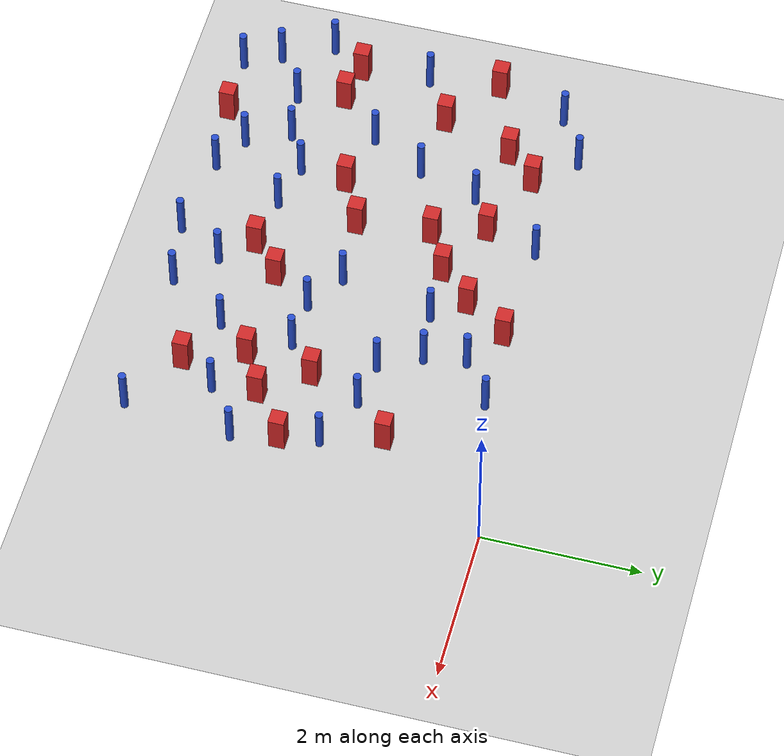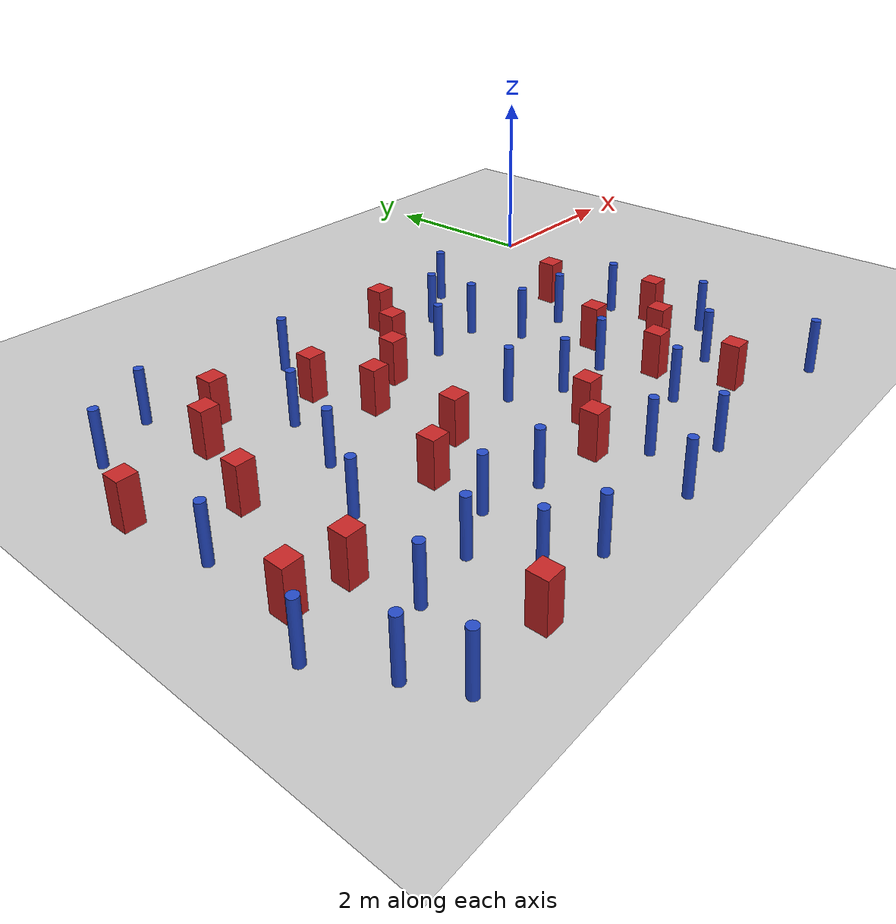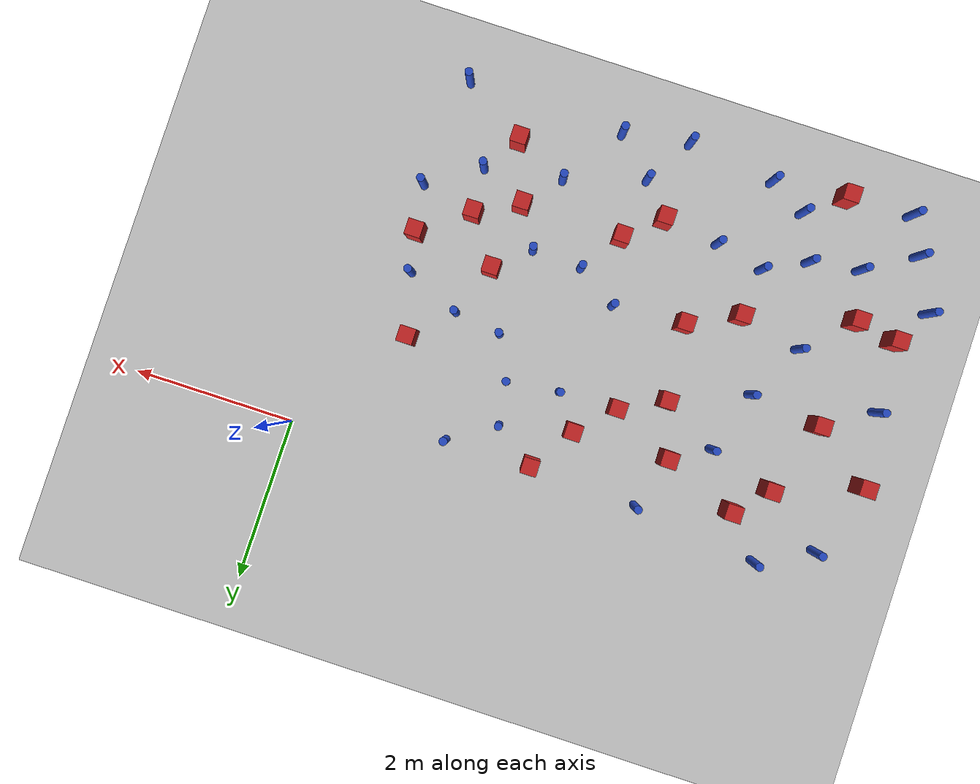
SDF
<sdf version="1.6">
 <world name="default">
  <model name="ground_plane">
   <static>1</static>
   <link name="link">
    <collision name="collision">
     <geometry><plane><normal>0 0 1</normal><size>100 100</size></plane></geometry>
     <surface><friction><ode><mu>100</mu><mu2>50</mu2></ode></friction></surface>
    </collision>
    <visual name="visual">
     <cast_shadows>0</cast_shadows>
     <geometry><plane><normal>0 0 1</normal><size>100 100</size></plane></geometry>
     <material>
      <ambient>1.0 1.0 1.0 1.0</ambient>
      <diffuse>0.8 0.8 0.8 1.0</diffuse>
      <specular>0.01 0.01 0.01 1.000000</specular>
     </material>
    </visual>
   </link>
  </model>
  <model name="pole_obstacle1">
   <static>true</static>
   <pose>-3.60275589972 -4.77980492807 2.88873142074e-08 -9.90536689859e-09 4.60219948989e-07 -1.20965994961e-07</pose>
   <link name="link">
    <pose>0 0 0.3 0 -0 0</pose>
    <inertial>
     <mass>1</mass>
     <inertia><ixx>0.145833</ixx><ixy>0</ixy><ixz>0</ixz><iyy>0.145833</iyy><iyz>0</iyz><izz>0.125</izz></inertia>
    </inertial>
    <collision name="collision">
     <geometry><cylinder><radius>0.05</radius><length>.6</length></cylinder></geometry>
    </collision>
    <visual name="visual">
     <geometry><cylinder><radius>0.05</radius><length>.6</length></cylinder></geometry>
     <material>
      <script><name>Gazebo/Blue</name><uri>file://media/materials/scripts/gazebo.material</uri></script>
     </material>
    </visual>
   </link>
  </model>
  <model name="pole_obstacle7">
   <static>true</static>
   <pose>-6.55722692997 -0.499189237258 2.88873142074e-08 -9.90536689333e-09 4.60219949001e-07 -1.20965994954e-07</pose>
   <link name="link">
    <pose>0 0 0.3 0 -0 0</pose>
    <inertial>
     <mass>1</mass>
     <inertia><ixx>0.145833</ixx><ixy>0</ixy><ixz>0</ixz><iyy>0.145833</iyy><iyz>0</iyz><izz>0.125</izz></inertia>
    </inertial>
    <collision name="collision">
     <geometry><cylinder><radius>0.05</radius><length>.6</length></cylinder></geometry>
    </collision>
    <visual name="visual">
     <geometry><cylinder><radius>0.05</radius><length>.6</length></cylinder></geometry>
     <material>
      <script><name>Gazebo/Blue</name><uri>file://media/materials/scripts/gazebo.material</uri></script>
     </material>
    </visual>
   </link>
  </model>
  <model name="pole_obstacle10">
   <static>true</static>
   <pose>-2.10604508527 -1.82271436291 2.88873142074e-08 -9.90536689395e-09 4.60219949e-07 -1.20965994953e-07</pose>
   <link name="link">
    <pose>0 0 0.3 0 -0 0</pose>
    <inertial>
     <mass>1</mass>
     <inertia><ixx>0.145833</ixx><ixy>0</ixy><ixz>0</ixz><iyy>0.145833</iyy><iyz>0</iyz><izz>0.125</izz></inertia>
    </inertial>
    <collision name="collision">
     <geometry><cylinder><radius>0.05</radius><length>.6</length></cylinder></geometry>
    </collision>
    <visual name="visual">
     <geometry><cylinder><radius>0.05</radius><length>.6</length></cylinder></geometry>
     <material>
      <script><name>Gazebo/Blue</name><uri>file://media/materials/scripts/gazebo.material</uri></script>
     </material>
    </visual>
   </link>
  </model>
  <model name="pole_obstacle22">
   <static>true</static>
   <pose>-2.25530904149 -3.8688419531 2.88873142074e-08 -9.90536690232e-09 4.6021994898e-07 -1.20965994968e-07</pose>
   <link name="link">
    <pose>0 0 0.3 0 -0 0</pose>
    <inertial>
     <mass>1</mass>
     <inertia><ixx>0.145833</ixx><ixy>0</ixy><ixz>0</ixz><iyy>0.145833</iyy><iyz>0</iyz><izz>0.125</izz></inertia>
    </inertial>
    <collision name="collision">
     <geometry><cylinder><radius>0.05</radius><length>.6</length></cylinder></geometry>
    </collision>
    <visual name="visual">
     <geometry><cylinder><radius>0.05</radius><length>.6</length></cylinder></geometry>
     <material>
      <script><name>Gazebo/Blue</name><uri>file://media/materials/scripts/gazebo.material</uri></script>
     </material>
    </visual>
   </link>
  </model>
  <model name="square_post_obstacle23">
   <static>true</static>
   <pose>-4.5173909477 -1.01557871143 8.22691968438e-08 7.2212513382e-06 -7.54495500217e-07 2.29674213826e-05</pose>
   <link name="link">
    <pose>0 0 0.25 0 -0 0</pose>
    <inertial>
     <mass>100</mass>
     <inertia>
      <ixx>0.166667</ixx>
      <ixy>0</ixy>
      <ixz>0</ixz>
      <iyy>0.166667</iyy>
      <iyz>0</iyz>
      <izz>0.166667</izz>
     </inertia>
    </inertial>
    <collision name="collision"><geometry><box><size>.2 .2 .5</size></box></geometry></collision>
    <visual name="visual">
     <geometry><box><size>.2 .2 .5</size></box></geometry>
     <material>
      <script><name>Gazebo/Red</name><uri>file://media/materials/scripts/gazebo.material</uri></script>
     </material>
    </visual>
   </link>
  </model>
  <model name="square_post_obstacle24">
   <static>true</static>
   <pose>-6.70715335339 -3.23481883566 8.22691968438e-08 7.2212513382e-06 -7.54495500217e-07 2.29674213826e-05</pose>
   <link name="link">
    <pose>0 0 0.25 0 -0 0</pose>
    <inertial>
     <mass>100</mass>
     <inertia>
      <ixx>0.166667</ixx>
      <ixy>0</ixy>
      <ixz>0</ixz>
      <iyy>0.166667</iyy>
      <iyz>0</iyz>
      <izz>0.166667</izz>
     </inertia>
    </inertial>
    <collision name="collision"><geometry><box><size>.2 .2 .5</size></box></geometry></collision>
    <visual name="visual">
     <geometry><box><size>.2 .2 .5</size></box></geometry>
     <material>
      <script><name>Gazebo/Red</name><uri>file://media/materials/scripts/gazebo.material</uri></script>
     </material>
    </visual>
   </link>
  </model>
  <model name="square_post_obstacle27">
   <static>true</static>
   <pose>-1.76567258791 -2.56179433615 8.22691968438e-08 7.2212513382e-06 -7.54495500217e-07 2.29674213826e-05</pose>
   <link name="link">
    <pose>0 0 0.25 0 -0 0</pose>
    <inertial>
     <mass>100</mass>
     <inertia>
      <ixx>0.166667</ixx>
      <ixy>0</ixy>
      <ixz>0</ixz>
      <iyy>0.166667</iyy>
      <iyz>0</iyz>
      <izz>0.166667</izz>
     </inertia>
    </inertial>
    <collision name="collision"><geometry><box><size>.2 .2 .5</size></box></geometry></collision>
    <visual name="visual">
     <geometry><box><size>.2 .2 .5</size></box></geometry>
     <material>
      <script><name>Gazebo/Red</name><uri>file://media/materials/scripts/gazebo.material</uri></script>
     </material>
    </visual>
   </link>
  </model>
  <model name="pole_obstacle37">
   <static>true</static>
   <pose>-2.44811253121 -0.762430633008 2.88873142074e-08 -9.90536689285e-09 4.60219949002e-07 -1.20965994953e-07</pose>
   <link name="link">
    <pose>0 0 0.3 0 -0 0</pose>
    <inertial>
     <mass>1</mass>
     <inertia><ixx>0.145833</ixx><ixy>0</ixy><ixz>0</ixz><iyy>0.145833</iyy><iyz>0</iyz><izz>0.125</izz></inertia>
    </inertial>
    <collision name="collision">
     <geometry><cylinder><radius>0.05</radius><length>.6</length></cylinder></geometry>
    </collision>
    <visual name="visual">
     <geometry><cylinder><radius>0.05</radius><length>.6</length></cylinder></geometry>
     <material>
      <script><name>Gazebo/Blue</name><uri>file://media/materials/scripts/gazebo.material</uri></script>
     </material>
    </visual>
   </link>
  </model>
  <model name="square_post_obstacle34">
   <static>true</static>
   <pose>-6.13358861595 -1.96599567202 8.22691968438e-08 7.2212513382e-06 -7.54495500217e-07 2.29674213826e-05</pose>
   <link name="link">
    <pose>0 0 0.25 0 -0 0</pose>
    <inertial>
     <mass>100</mass>
     <inertia>
      <ixx>0.166667</ixx>
      <ixy>0</ixy>
      <ixz>0</ixz>
      <iyy>0.166667</iyy>
      <iyz>0</iyz>
      <izz>0.166667</izz>
     </inertia>
    </inertial>
    <collision name="collision"><geometry><box><size>.2 .2 .5</size></box></geometry></collision>
    <visual name="visual">
     <geometry><box><size>.2 .2 .5</size></box></geometry>
     <material>
      <script><name>Gazebo/Red</name><uri>file://media/materials/scripts/gazebo.material</uri></script>
     </material>
    </visual>
   </link>
  </model>
  <model name="pole_obstacle47">
   <static>true</static>
   <pose>-6.76178770798 -2.34009925157 2.88873142074e-08 -9.90536690245e-09 4.6021994898e-07 -1.20965994966e-07</pose>
   <link name="link">
    <pose>0 0 0.3 0 -0 0</pose>
    <inertial>
     <mass>1</mass>
     <inertia><ixx>0.145833</ixx><ixy>0</ixy><ixz>0</ixz><iyy>0.145833</iyy><iyz>0</iyz><izz>0.125</izz></inertia>
    </inertial>
    <collision name="collision">
     <geometry><cylinder><radius>0.05</radius><length>.6</length></cylinder></geometry>
    </collision>
    <visual name="visual">
     <geometry><cylinder><radius>0.05</radius><length>.6</length></cylinder></geometry>
     <material>
      <script><name>Gazebo/Blue</name><uri>file://media/materials/scripts/gazebo.material</uri></script>
     </material>
    </visual>
   </link>
  </model>
  <model name="pole_obstacle48">
   <static>true</static>
   <pose>-5.62628607458 -2.7789011832 2.88873142074e-08 -9.90536690245e-09 4.6021994898e-07 -1.20965994966e-07</pose>
   <link name="link">
    <pose>0 0 0.3 0 -0 0</pose>
    <inertial>
     <mass>1</mass>
     <inertia><ixx>0.145833</ixx><ixy>0</ixy><ixz>0</ixz><iyy>0.145833</iyy><iyz>0</iyz><izz>0.125</izz></inertia>
    </inertial>
    <collision name="collision">
     <geometry><cylinder><radius>0.05</radius><length>.6</length></cylinder></geometry>
    </collision>
    <visual name="visual">
     <geometry><cylinder><radius>0.05</radius><length>.6</length></cylinder></geometry>
     <material>
      <script><name>Gazebo/Blue</name><uri>file://media/materials/scripts/gazebo.material</uri></script>
     </material>
    </visual>
   </link>
  </model>
  <model name="pole_obstacle49">
   <static>true</static>
   <pose>-0.643846311855 -3.2878571671 2.88873142074e-08 -9.90536689636e-09 4.60219948994e-07 -1.20965994958e-07</pose>
   <link name="link">
    <pose>0 0 0.3 0 -0 0</pose>
    <inertial>
     <mass>1</mass>
     <inertia><ixx>0.145833</ixx><ixy>0</ixy><ixz>0</ixz><iyy>0.145833</iyy><iyz>0</iyz><izz>0.125</izz></inertia>
    </inertial>
    <collision name="collision">
     <geometry><cylinder><radius>0.05</radius><length>.6</length></cylinder></geometry>
    </collision>
    <visual name="visual">
     <geometry><cylinder><radius>0.05</radius><length>.6</length></cylinder></geometry>
     <material>
      <script><name>Gazebo/Blue</name><uri>file://media/materials/scripts/gazebo.material</uri></script>
     </material>
    </visual>
   </link>
  </model>
  <model name="pole_obstacle50">
   <static>true</static>
   <pose>-1.51328782539 -1.90866504086 2.88873142074e-08 -9.90536689672e-09 4.60219948993e-07 -1.20965994959e-07</pose>
   <link name="link">
    <pose>0 0 0.3 0 -0 0</pose>
    <inertial>
     <mass>1</mass>
     <inertia><ixx>0.145833</ixx><ixy>0</ixy><ixz>0</ixz><iyy>0.145833</iyy><iyz>0</iyz><izz>0.125</izz></inertia>
    </inertial>
    <collision name="collision">
     <geometry><cylinder><radius>0.05</radius><length>.6</length></cylinder></geometry>
    </collision>
    <visual name="visual">
     <geometry><cylinder><radius>0.05</radius><length>.6</length></cylinder></geometry>
     <material>
      <script><name>Gazebo/Blue</name><uri>file://media/materials/scripts/gazebo.material</uri></script>
     </material>
    </visual>
   </link>
  </model>
  <model name="square_post_obstacle42">
   <static>true</static>
   <pose>-3.58479568858 -3.79104422464 8.22691968438e-08 7.2212513382e-06 -7.54495500217e-07 2.29674213826e-05</pose>
   <link name="link">
    <pose>0 0 0.25 0 -0 0</pose>
    <inertial>
     <mass>100</mass>
     <inertia>
      <ixx>0.166667</ixx>
      <ixy>0</ixy>
      <ixz>0</ixz>
      <iyy>0.166667</iyy>
      <iyz>0</iyz>
      <izz>0.166667</izz>
     </inertia>
    </inertial>
    <collision name="collision"><geometry><box><size>.2 .2 .5</size></box></geometry></collision>
    <visual name="visual">
     <geometry><box><size>.2 .2 .5</size></box></geometry>
     <material>
      <script><name>Gazebo/Red</name><uri>file://media/materials/scripts/gazebo.material</uri></script>
     </material>
    </visual>
   </link>
  </model>
  <model name="pole_obstacle58">
   <static>true</static>
   <pose>-6.05052273852 -3.93578563439 2.88873142074e-08 -9.90536690245e-09 4.6021994898e-07 -1.20965994966e-07</pose>
   <link name="link">
    <pose>0 0 0.3 0 -0 0</pose>
    <inertial>
     <mass>1</mass>
     <inertia><ixx>0.145833</ixx><ixy>0</ixy><ixz>0</ixz><iyy>0.145833</iyy><iyz>0</iyz><izz>0.125</izz></inertia>
    </inertial>
    <collision name="collision">
     <geometry><cylinder><radius>0.05</radius><length>.6</length></cylinder></geometry>
    </collision>
    <visual name="visual">
     <geometry><cylinder><radius>0.05</radius><length>.6</length></cylinder></geometry>
     <material>
      <script><name>Gazebo/Blue</name><uri>file://media/materials/scripts/gazebo.material</uri></script>
     </material>
    </visual>
   </link>
  </model>
  <model name="pole_obstacle61">
   <static>true</static>
   <pose>-4.29644254252 -3.70386586468 2.88873142074e-08 -9.90536690245e-09 4.6021994898e-07 -1.20965994966e-07</pose>
   <link name="link">
    <pose>0 0 0.3 0 -0 0</pose>
    <inertial>
     <mass>1</mass>
     <inertia><ixx>0.145833</ixx><ixy>0</ixy><ixz>0</ixz><iyy>0.145833</iyy><iyz>0</iyz><izz>0.125</izz></inertia>
    </inertial>
    <collision name="collision">
     <geometry><cylinder><radius>0.05</radius><length>.6</length></cylinder></geometry>
    </collision>
    <visual name="visual">
     <geometry><cylinder><radius>0.05</radius><length>.6</length></cylinder></geometry>
     <material>
      <script><name>Gazebo/Blue</name><uri>file://media/materials/scripts/gazebo.material</uri></script>
     </material>
    </visual>
   </link>
  </model>
  <model name="square_post_obstacle49">
   <static>true</static>
   <pose>-5.62283646338 -4.7405497997 8.22691968438e-08 7.22125133819e-06 -7.54495500217e-07 2.29674213826e-05</pose>
   <link name="link">
    <pose>0 0 0.25 0 -0 0</pose>
    <inertial>
     <mass>100</mass>
     <inertia>
      <ixx>0.166667</ixx>
      <ixy>0</ixy>
      <ixz>0</ixz>
      <iyy>0.166667</iyy>
      <iyz>0</iyz>
      <izz>0.166667</izz>
     </inertia>
    </inertial>
    <collision name="collision"><geometry><box><size>.2 .2 .5</size></box></geometry></collision>
    <visual name="visual">
     <geometry><box><size>.2 .2 .5</size></box></geometry>
     <material>
      <script><name>Gazebo/Red</name><uri>file://media/materials/scripts/gazebo.material</uri></script>
     </material>
    </visual>
   </link>
  </model>
  <model name="square_post_obstacle50">
   <static>true</static>
   <pose>-4.83255219903 -2.95318874231 8.22691968438e-08 7.2212513382e-06 -7.54495500217e-07 2.29674213826e-05</pose>
   <link name="link">
    <pose>0 0 0.25 0 -0 0</pose>
    <inertial>
     <mass>100</mass>
     <inertia>
      <ixx>0.166667</ixx>
      <ixy>0</ixy>
      <ixz>0</ixz>
      <iyy>0.166667</iyy>
      <iyz>0</iyz>
      <izz>0.166667</izz>
     </inertia>
    </inertial>
    <collision name="collision"><geometry><box><size>.2 .2 .5</size></box></geometry></collision>
    <visual name="visual">
     <geometry><box><size>.2 .2 .5</size></box></geometry>
     <material>
      <script><name>Gazebo/Red</name><uri>file://media/materials/scripts/gazebo.material</uri></script>
     </material>
    </visual>
   </link>
  </model>
  <model name="pole_obstacle70">
   <static>true</static>
   <pose>-5.17053075357 -4.38938246099 2.88873142074e-08 -9.90536690842e-09 4.60219948965e-07 -1.20965994976e-07</pose>
   <link name="link">
    <pose>0 0 0.3 0 -0 0</pose>
    <inertial>
     <mass>1</mass>
     <inertia><ixx>0.145833</ixx><ixy>0</ixy><ixz>0</ixz><iyy>0.145833</iyy><iyz>0</iyz><izz>0.125</izz></inertia>
    </inertial>
    <collision name="collision">
     <geometry><cylinder><radius>0.05</radius><length>.6</length></cylinder></geometry>
    </collision>
    <visual name="visual">
     <geometry><cylinder><radius>0.05</radius><length>.6</length></cylinder></geometry>
     <material>
      <script><name>Gazebo/Blue</name><uri>file://media/materials/scripts/gazebo.material</uri></script>
     </material>
    </visual>
   </link>
  </model>
  <model name="pole_obstacle80">
   <static>true</static>
   <pose>-5.2430106532 -2.07086255487 2.88873142074e-08 -9.90536690245e-09 4.6021994898e-07 -1.20965994966e-07</pose>
   <link name="link">
    <pose>0 0 0.3 0 -0 0</pose>
    <inertial>
     <mass>1</mass>
     <inertia><ixx>0.145833</ixx><ixy>0</ixy><ixz>0</ixz><iyy>0.145833</iyy><iyz>0</iyz><izz>0.125</izz></inertia>
    </inertial>
    <collision name="collision">
     <geometry><cylinder><radius>0.05</radius><length>.6</length></cylinder></geometry>
    </collision>
    <visual name="visual">
     <geometry><cylinder><radius>0.05</radius><length>.6</length></cylinder></geometry>
     <material>
      <script><name>Gazebo/Blue</name><uri>file://media/materials/scripts/gazebo.material</uri></script>
     </material>
    </visual>
   </link>
  </model>
  <model name="square_post_obstacle70">
   <static>true</static>
   <pose>-1.34234610897 -3.1392164839 8.22691968438e-08 7.2212513382e-06 -7.54495500217e-07 2.29674213826e-05</pose>
   <link name="link">
    <pose>0 0 0.25 0 -0 0</pose>
    <inertial>
     <mass>100</mass>
     <inertia>
      <ixx>0.166667</ixx>
      <ixy>0</ixy>
      <ixz>0</ixz>
      <iyy>0.166667</iyy>
      <iyz>0</iyz>
      <izz>0.166667</izz>
     </inertia>
    </inertial>
    <collision name="collision"><geometry><box><size>.2 .2 .5</size></box></geometry></collision>
    <visual name="visual">
     <geometry><box><size>.2 .2 .5</size></box></geometry>
     <material>
      <script><name>Gazebo/Red</name><uri>file://media/materials/scripts/gazebo.material</uri></script>
     </material>
    </visual>
   </link>
  </model>
  <model name="square_post_obstacle72">
   <static>true</static>
   <pose>-6.18268394666 -3.3233390862 8.22691968438e-08 7.2212513382e-06 -7.54495500217e-07 2.29674213826e-05</pose>
   <link name="link">
    <pose>0 0 0.25 0 -0 0</pose>
    <inertial>
     <mass>100</mass>
     <inertia>
      <ixx>0.166667</ixx>
      <ixy>0</ixy>
      <ixz>0</ixz>
      <iyy>0.166667</iyy>
      <iyz>0</iyz>
      <izz>0.166667</izz>
     </inertia>
    </inertial>
    <collision name="collision"><geometry><box><size>.2 .2 .5</size></box></geometry></collision>
    <visual name="visual">
     <geometry><box><size>.2 .2 .5</size></box></geometry>
     <material>
      <script><name>Gazebo/Red</name><uri>file://media/materials/scripts/gazebo.material</uri></script>
     </material>
    </visual>
   </link>
  </model>
  <model name="pole_obstacle89">
   <static>true</static>
   <pose>-2.7746374464 -4.63968538601 2.88873142074e-08 -9.90536689859e-09 4.60219948989e-07 -1.20965994961e-07</pose>
   <link name="link">
    <pose>0 0 0.3 0 -0 0</pose>
    <inertial>
     <mass>1</mass>
     <inertia><ixx>0.145833</ixx><ixy>0</ixy><ixz>0</ixz><iyy>0.145833</iyy><iyz>0</iyz><izz>0.125</izz></inertia>
    </inertial>
    <collision name="collision">
     <geometry><cylinder><radius>0.05</radius><length>.6</length></cylinder></geometry>
    </collision>
    <visual name="visual">
     <geometry><cylinder><radius>0.05</radius><length>.6</length></cylinder></geometry>
     <material>
      <script><name>Gazebo/Blue</name><uri>file://media/materials/scripts/gazebo.material</uri></script>
     </material>
    </visual>
   </link>
  </model>
  <model name="square_post_obstacle79">
   <static>true</static>
   <pose>-4.29409535922 -1.68524043854 8.22691968438e-08 7.2212513382e-06 -7.54495500217e-07 2.29674213826e-05</pose>
   <link name="link">
    <pose>0 0 0.25 0 -0 0</pose>
    <inertial>
     <mass>100</mass>
     <inertia>
      <ixx>0.166667</ixx>
      <ixy>0</ixy>
      <ixz>0</ixz>
      <iyy>0.166667</iyy>
      <iyz>0</iyz>
      <izz>0.166667</izz>
     </inertia>
    </inertial>
    <collision name="collision"><geometry><box><size>.2 .2 .5</size></box></geometry></collision>
    <visual name="visual">
     <geometry><box><size>.2 .2 .5</size></box></geometry>
     <material>
      <script><name>Gazebo/Red</name><uri>file://media/materials/scripts/gazebo.material</uri></script>
     </material>
    </visual>
   </link>
  </model>
  <model name="pole_obstacle98">
   <static>true</static>
   <pose>-2.17694260471 -2.92749446526 2.88873142074e-08 -9.90536690232e-09 4.6021994898e-07 -1.20965994968e-07</pose>
   <link name="link">
    <pose>0 0 0.3 0 -0 0</pose>
    <inertial>
     <mass>1</mass>
     <inertia><ixx>0.145833</ixx><ixy>0</ixy><ixz>0</ixz><iyy>0.145833</iyy><iyz>0</iyz><izz>0.125</izz></inertia>
    </inertial>
    <collision name="collision">
     <geometry><cylinder><radius>0.05</radius><length>.6</length></cylinder></geometry>
    </collision>
    <visual name="visual">
     <geometry><cylinder><radius>0.05</radius><length>.6</length></cylinder></geometry>
     <material>
      <script><name>Gazebo/Blue</name><uri>file://media/materials/scripts/gazebo.material</uri></script>
     </material>
    </visual>
   </link>
  </model>
  <model name="square_post_obstacle102">
   <static>true</static>
   <pose>-1.87789972417 -3.42178781559 8.22691968438e-08 7.2212513382e-06 -7.54495500217e-07 2.29674213826e-05</pose>
   <link name="link">
    <pose>0 0 0.25 0 -0 0</pose>
    <inertial>
     <mass>100</mass>
     <inertia>
      <ixx>0.166667</ixx>
      <ixy>0</ixy>
      <ixz>0</ixz>
      <iyy>0.166667</iyy>
      <iyz>0</iyz>
      <izz>0.166667</izz>
     </inertia>
    </inertial>
    <collision name="collision"><geometry><box><size>.2 .2 .5</size></box></geometry></collision>
    <visual name="visual">
     <geometry><box><size>.2 .2 .5</size></box></geometry>
     <material>
      <script><name>Gazebo/Red</name><uri>file://media/materials/scripts/gazebo.material</uri></script>
     </material>
    </visual>
   </link>
  </model>
  <model name="pole_obstacle111">
   <static>true</static>
   <pose>-3.02344167949 -1.3782699057 2.88873142074e-08 -9.90536691123e-09 4.60219948959e-07 -1.20965994982e-07</pose>
   <link name="link">
    <pose>0 0 0.3 0 -0 0</pose>
    <inertial>
     <mass>1</mass>
     <inertia><ixx>0.145833</ixx><ixy>0</ixy><ixz>0</ixz><iyy>0.145833</iyy><iyz>0</iyz><izz>0.125</izz></inertia>
    </inertial>
    <collision name="collision">
     <geometry><cylinder><radius>0.05</radius><length>.6</length></cylinder></geometry>
    </collision>
    <visual name="visual">
     <geometry><cylinder><radius>0.05</radius><length>.6</length></cylinder></geometry>
     <material>
      <script><name>Gazebo/Blue</name><uri>file://media/materials/scripts/gazebo.material</uri></script>
     </material>
    </visual>
   </link>
  </model>
  <model name="pole_obstacle113">
   <static>true</static>
   <pose>-1.88442633235 -0.391684975055 2.88873142074e-08 -9.90536689733e-09 4.60219948992e-07 -1.20965994959e-07</pose>
   <link name="link">
    <pose>0 0 0.3 0 -0 0</pose>
    <inertial>
     <mass>1</mass>
     <inertia><ixx>0.145833</ixx><ixy>0</ixy><ixz>0</ixz><iyy>0.145833</iyy><iyz>0</iyz><izz>0.125</izz></inertia>
    </inertial>
    <collision name="collision">
     <geometry><cylinder><radius>0.05</radius><length>.6</length></cylinder></geometry>
    </collision>
    <visual name="visual">
     <geometry><cylinder><radius>0.05</radius><length>.6</length></cylinder></geometry>
     <material>
      <script><name>Gazebo/Blue</name><uri>file://media/materials/scripts/gazebo.material</uri></script>
     </material>
    </visual>
   </link>
  </model>
  <model name="square_post_obstacle113">
   <static>true</static>
   <pose>-3.74620074573 -1.40357612612 8.22691968438e-08 7.22125133819e-06 -7.54495500217e-07 2.29674213826e-05</pose>
   <link name="link">
    <pose>0 0 0.25 0 -0 0</pose>
    <inertial>
     <mass>100</mass>
     <inertia>
      <ixx>0.166667</ixx>
      <ixy>0</ixy>
      <ixz>0</ixz>
      <iyy>0.166667</iyy>
      <iyz>0</iyz>
      <izz>0.166667</izz>
     </inertia>
    </inertial>
    <collision name="collision"><geometry><box><size>.2 .2 .5</size></box></geometry></collision>
    <visual name="visual">
     <geometry><box><size>.2 .2 .5</size></box></geometry>
     <material>
      <script><name>Gazebo/Red</name><uri>file://media/materials/scripts/gazebo.material</uri></script>
     </material>
    </visual>
   </link>
  </model>
  <model name="pole_obstacle128">
   <static>true</static>
   <pose>-1.29002114797 -3.70724820686 2.88873142074e-08 -9.90536689791e-09 4.6021994899e-07 -1.20965994959e-07</pose>
   <link name="link">
    <pose>0 0 0.3 0 -0 0</pose>
    <inertial>
     <mass>1</mass>
     <inertia><ixx>0.145833</ixx><ixy>0</ixy><ixz>0</ixz><iyy>0.145833</iyy><iyz>0</iyz><izz>0.125</izz></inertia>
    </inertial>
    <collision name="collision">
     <geometry><cylinder><radius>0.05</radius><length>.6</length></cylinder></geometry>
    </collision>
    <visual name="visual">
     <geometry><cylinder><radius>0.05</radius><length>.6</length></cylinder></geometry>
     <material>
      <script><name>Gazebo/Blue</name><uri>file://media/materials/scripts/gazebo.material</uri></script>
     </material>
    </visual>
   </link>
  </model>
  <model name="pole_obstacle131">
   <static>true</static>
   <pose>-5.88702390171 -0.151733654243 2.88873142074e-08 -9.90536689223e-09 4.60219949004e-07 -1.20965994952e-07</pose>
   <link name="link">
    <pose>0 0 0.3 0 -0 0</pose>
    <inertial>
     <mass>1</mass>
     <inertia><ixx>0.145833</ixx><ixy>0</ixy><ixz>0</ixz><iyy>0.145833</iyy><iyz>0</iyz><izz>0.125</izz></inertia>
    </inertial>
    <collision name="collision">
     <geometry><cylinder><radius>0.05</radius><length>.6</length></cylinder></geometry>
    </collision>
    <visual name="visual">
     <geometry><cylinder><radius>0.05</radius><length>.6</length></cylinder></geometry>
     <material>
      <script><name>Gazebo/Blue</name><uri>file://media/materials/scripts/gazebo.material</uri></script>
     </material>
    </visual>
   </link>
  </model>
  <model name="pole_obstacle133">
   <static>true</static>
   <pose>-3.31070539867 -2.58200472726 2.88873142074e-08 -9.90536689597e-09 4.60219948995e-07 -1.20965994957e-07</pose>
   <link name="link">
    <pose>0 0 0.3 0 -0 0</pose>
    <inertial>
     <mass>1</mass>
     <inertia><ixx>0.145833</ixx><ixy>0</ixy><ixz>0</ixz><iyy>0.145833</iyy><iyz>0</iyz><izz>0.125</izz></inertia>
    </inertial>
    <collision name="collision">
     <geometry><cylinder><radius>0.05</radius><length>.6</length></cylinder></geometry>
    </collision>
    <visual name="visual">
     <geometry><cylinder><radius>0.05</radius><length>.6</length></cylinder></geometry>
     <material>
      <script><name>Gazebo/Blue</name><uri>file://media/materials/scripts/gazebo.material</uri></script>
     </material>
    </visual>
   </link>
  </model>
  <model name="pole_obstacle134">
   <static>true</static>
   <pose>-0.839961478749 -2.20748086375 2.88873142074e-08 -9.90536689636e-09 4.60219948994e-07 -1.20965994958e-07</pose>
   <link name="link">
    <pose>0 0 0.3 0 -0 0</pose>
    <inertial>
     <mass>1</mass>
     <inertia><ixx>0.145833</ixx><ixy>0</ixy><ixz>0</ixz><iyy>0.145833</iyy><iyz>0</iyz><izz>0.125</izz></inertia>
    </inertial>
    <collision name="collision">
     <geometry><cylinder><radius>0.05</radius><length>.6</length></cylinder></geometry>
    </collision>
    <visual name="visual">
     <geometry><cylinder><radius>0.05</radius><length>.6</length></cylinder></geometry>
     <material>
      <script><name>Gazebo/Blue</name><uri>file://media/materials/scripts/gazebo.material</uri></script>
     </material>
    </visual>
   </link>
  </model>
  <model name="pole_obstacle138">
   <static>true</static>
   <pose>-4.70480183494 -4.64497957201 2.88873142074e-08 -9.90536690842e-09 4.60219948965e-07 -1.20965994976e-07</pose>
   <link name="link">
    <pose>0 0 0.3 0 -0 0</pose>
    <inertial>
     <mass>1</mass>
     <inertia><ixx>0.145833</ixx><ixy>0</ixy><ixz>0</ixz><iyy>0.145833</iyy><iyz>0</iyz><izz>0.125</izz></inertia>
    </inertial>
    <collision name="collision">
     <geometry><cylinder><radius>0.05</radius><length>.6</length></cylinder></geometry>
    </collision>
    <visual name="visual">
     <geometry><cylinder><radius>0.05</radius><length>.6</length></cylinder></geometry>
     <material>
      <script><name>Gazebo/Blue</name><uri>file://media/materials/scripts/gazebo.material</uri></script>
     </material>
    </visual>
   </link>
  </model>
  <model name="pole_obstacle141">
   <static>true</static>
   <pose>-3.24207429055 -4.1879134331 2.88873142074e-08 -9.90536692062e-09 4.60219948937e-07 -1.20965994985e-07</pose>
   <link name="link">
    <pose>0 0 0.3 0 -0 0</pose>
    <inertial>
     <mass>1</mass>
     <inertia><ixx>0.145833</ixx><ixy>0</ixy><ixz>0</ixz><iyy>0.145833</iyy><iyz>0</iyz><izz>0.125</izz></inertia>
    </inertial>
    <collision name="collision">
     <geometry><cylinder><radius>0.05</radius><length>.6</length></cylinder></geometry>
    </collision>
    <visual name="visual">
     <geometry><cylinder><radius>0.05</radius><length>.6</length></cylinder></geometry>
     <material>
      <script><name>Gazebo/Blue</name><uri>file://media/materials/scripts/gazebo.material</uri></script>
     </material>
    </visual>
   </link>
  </model>
  <model name="pole_obstacle143">
   <static>true</static>
   <pose>-2.3686640007 -1.29654906186 2.88873142074e-08 -9.90536689395e-09 4.60219949e-07 -1.20965994953e-07</pose>
   <link name="link">
    <pose>0 0 0.3 0 -0 0</pose>
    <inertial>
     <mass>1</mass>
     <inertia><ixx>0.145833</ixx><ixy>0</ixy><ixz>0</ixz><iyy>0.145833</iyy><iyz>0</iyz><izz>0.125</izz></inertia>
    </inertial>
    <collision name="collision">
     <geometry><cylinder><radius>0.05</radius><length>.6</length></cylinder></geometry>
    </collision>
    <visual name="visual">
     <geometry><cylinder><radius>0.05</radius><length>.6</length></cylinder></geometry>
     <material>
      <script><name>Gazebo/Blue</name><uri>file://media/materials/scripts/gazebo.material</uri></script>
     </material>
    </visual>
   </link>
  </model>
  <model name="square_post_obstacle140">
   <static>true</static>
   <pose>-3.32243636303 -0.974655257587 8.22691968438e-08 7.2212513382e-06 -7.54495500217e-07 2.29674213826e-05</pose>
   <link name="link">
    <pose>0 0 0.25 0 -0 0</pose>
    <inertial>
     <mass>100</mass>
     <inertia>
      <ixx>0.166667</ixx>
      <ixy>0</ixy>
      <ixz>0</ixz>
      <iyy>0.166667</iyy>
      <iyz>0</iyz>
      <izz>0.166667</izz>
     </inertia>
    </inertial>
    <collision name="collision"><geometry><box><size>.2 .2 .5</size></box></geometry></collision>
    <visual name="visual">
     <geometry><box><size>.2 .2 .5</size></box></geometry>
     <material>
      <script><name>Gazebo/Red</name><uri>file://media/materials/scripts/gazebo.material</uri></script>
     </material>
    </visual>
   </link>
  </model>
  <model name="square_post_obstacle144">
   <static>true</static>
   <pose>-6.87363394819 -1.41831496047 8.22691968438e-08 7.2212513382e-06 -7.54495500217e-07 2.29674213826e-05</pose>
   <link name="link">
    <pose>0 0 0.25 0 -0 0</pose>
    <inertial>
     <mass>100</mass>
     <inertia>
      <ixx>0.166667</ixx>
      <ixy>0</ixy>
      <ixz>0</ixz>
      <iyy>0.166667</iyy>
      <iyz>0</iyz>
      <izz>0.166667</izz>
     </inertia>
    </inertial>
    <collision name="collision"><geometry><box><size>.2 .2 .5</size></box></geometry></collision>
    <visual name="visual">
     <geometry><box><size>.2 .2 .5</size></box></geometry>
     <material>
      <script><name>Gazebo/Red</name><uri>file://media/materials/scripts/gazebo.material</uri></script>
     </material>
    </visual>
   </link>
  </model>
  <model name="pole_obstacle151">
   <static>true</static>
   <pose>-4.90230760424 -3.56798984766 2.88873142074e-08 -9.90536690245e-09 4.6021994898e-07 -1.20965994966e-07</pose>
   <link name="link">
    <pose>0 0 0.3 0 -0 0</pose>
    <inertial>
     <mass>1</mass>
     <inertia><ixx>0.145833</ixx><ixy>0</ixy><ixz>0</ixz><iyy>0.145833</iyy><iyz>0</iyz><izz>0.125</izz></inertia>
    </inertial>
    <collision name="collision">
     <geometry><cylinder><radius>0.05</radius><length>.6</length></cylinder></geometry>
    </collision>
    <visual name="visual">
     <geometry><cylinder><radius>0.05</radius><length>.6</length></cylinder></geometry>
     <material>
      <script><name>Gazebo/Blue</name><uri>file://media/materials/scripts/gazebo.material</uri></script>
     </material>
    </visual>
   </link>
  </model>
  <model name="square_post_obstacle152">
   <static>true</static>
   <pose>-4.20707937363 -2.64501116432 8.22691968438e-08 7.2212513382e-06 -7.54495500217e-07 2.29674213826e-05</pose>
   <link name="link">
    <pose>0 0 0.25 0 -0 0</pose>
    <inertial>
     <mass>100</mass>
     <inertia>
      <ixx>0.166667</ixx>
      <ixy>0</ixy>
      <ixz>0</ixz>
      <iyy>0.166667</iyy>
      <iyz>0</iyz>
      <izz>0.166667</izz>
     </inertia>
    </inertial>
    <collision name="collision"><geometry><box><size>.2 .2 .5</size></box></geometry></collision>
    <visual name="visual">
     <geometry><box><size>.2 .2 .5</size></box></geometry>
     <material>
      <script><name>Gazebo/Red</name><uri>file://media/materials/scripts/gazebo.material</uri></script>
     </material>
    </visual>
   </link>
  </model>
  <model name="pole_obstacle157">
   <static>true</static>
   <pose>-2.80363628876 -2.90164039798 2.88873142074e-08 -9.90536690232e-09 4.6021994898e-07 -1.20965994968e-07</pose>
   <link name="link">
    <pose>0 0 0.3 0 -0 0</pose>
    <inertial>
     <mass>1</mass>
     <inertia><ixx>0.145833</ixx><ixy>0</ixy><ixz>0</ixz><iyy>0.145833</iyy><iyz>0</iyz><izz>0.125</izz></inertia>
    </inertial>
    <collision name="collision">
     <geometry><cylinder><radius>0.05</radius><length>.6</length></cylinder></geometry>
    </collision>
    <visual name="visual">
     <geometry><cylinder><radius>0.05</radius><length>.6</length></cylinder></geometry>
     <material>
      <script><name>Gazebo/Blue</name><uri>file://media/materials/scripts/gazebo.material</uri></script>
     </material>
    </visual>
   </link>
  </model>
  <model name="pole_obstacle162">
   <static>true</static>
   <pose>-0.793083311728 -4.67656633643 2.88873142074e-08 -9.90536689661e-09 4.60219948993e-07 -1.20965994957e-07</pose>
   <link name="link">
    <pose>0 0 0.3 0 -0 0</pose>
    <inertial>
     <mass>1</mass>
     <inertia><ixx>0.145833</ixx><ixy>0</ixy><ixz>0</ixz><iyy>0.145833</iyy><iyz>0</iyz><izz>0.125</izz></inertia>
    </inertial>
    <collision name="collision">
     <geometry><cylinder><radius>0.05</radius><length>.6</length></cylinder></geometry>
    </collision>
    <visual name="visual">
     <geometry><cylinder><radius>0.05</radius><length>.6</length></cylinder></geometry>
     <material>
      <script><name>Gazebo/Blue</name><uri>file://media/materials/scripts/gazebo.material</uri></script>
     </material>
    </visual>
   </link>
  </model>
  <model name="pole_obstacle165">
   <static>true</static>
   <pose>-6.44834322573 -4.77550389144 2.88873142074e-08 -9.90536690842e-09 4.60219948965e-07 -1.20965994976e-07</pose>
   <link name="link">
    <pose>0 0 0.3 0 -0 0</pose>
    <inertial>
     <mass>1</mass>
     <inertia><ixx>0.145833</ixx><ixy>0</ixy><ixz>0</ixz><iyy>0.145833</iyy><iyz>0</iyz><izz>0.125</izz></inertia>
    </inertial>
    <collision name="collision">
     <geometry><cylinder><radius>0.05</radius><length>.6</length></cylinder></geometry>
    </collision>
    <visual name="visual">
     <geometry><cylinder><radius>0.05</radius><length>.6</length></cylinder></geometry>
     <material>
      <script><name>Gazebo/Blue</name><uri>file://media/materials/scripts/gazebo.material</uri></script>
     </material>
    </visual>
   </link>
  </model>
  <model name="square_post_obstacle171">
   <static>true</static>
   <pose>-0.749121933986 -2.70064853998 8.22691968438e-08 7.2212513382e-06 -7.54495500217e-07 2.29674213826e-05</pose>
   <link name="link">
    <pose>0 0 0.25 0 -0 0</pose>
    <inertial>
     <mass>100</mass>
     <inertia>
      <ixx>0.166667</ixx>
      <ixy>0</ixy>
      <ixz>0</ixz>
      <iyy>0.166667</iyy>
      <iyz>0</iyz>
      <izz>0.166667</izz>
     </inertia>
    </inertial>
    <collision name="collision"><geometry><box><size>.2 .2 .5</size></box></geometry></collision>
    <visual name="visual">
     <geometry><box><size>.2 .2 .5</size></box></geometry>
     <material>
      <script><name>Gazebo/Red</name><uri>file://media/materials/scripts/gazebo.material</uri></script>
     </material>
    </visual>
   </link>
  </model>
  <model name="pole_obstacle177">
   <static>true</static>
   <pose>-5.42164580521 -3.83575297346 2.88873142074e-08 -9.90536690245e-09 4.6021994898e-07 -1.20965994966e-07</pose>
   <link name="link">
    <pose>0 0 0.3 0 -0 0</pose>
    <inertial>
     <mass>1</mass>
     <inertia><ixx>0.145833</ixx><ixy>0</ixy><ixz>0</ixz><iyy>0.145833</iyy><iyz>0</iyz><izz>0.125</izz></inertia>
    </inertial>
    <collision name="collision">
     <geometry><cylinder><radius>0.05</radius><length>.6</length></cylinder></geometry>
    </collision>
    <visual name="visual">
     <geometry><cylinder><radius>0.05</radius><length>.6</length></cylinder></geometry>
     <material>
      <script><name>Gazebo/Blue</name><uri>file://media/materials/scripts/gazebo.material</uri></script>
     </material>
    </visual>
   </link>
  </model>
  <model name="square_post_obstacle177">
   <static>true</static>
   <pose>-1.59964033034 -4.16477029035 8.22691968438e-08 7.2212513382e-06 -7.54495500217e-07 2.29674213826e-05</pose>
   <link name="link">
    <pose>0 0 0.25 0 -0 0</pose>
    <inertial>
     <mass>100</mass>
     <inertia>
      <ixx>0.166667</ixx>
      <ixy>0</ixy>
      <ixz>0</ixz>
      <iyy>0.166667</iyy>
      <iyz>0</iyz>
      <izz>0.166667</izz>
     </inertia>
    </inertial>
    <collision name="collision"><geometry><box><size>.2 .2 .5</size></box></geometry></collision>
    <visual name="visual">
     <geometry><box><size>.2 .2 .5</size></box></geometry>
     <material>
      <script><name>Gazebo/Red</name><uri>file://media/materials/scripts/gazebo.material</uri></script>
     </material>
    </visual>
   </link>
  </model>
  <model name="square_post_obstacle188">
   <static>true</static>
   <pose>-5.80867016022 -1.04074841437 8.22691968438e-08 7.2212513382e-06 -7.54495500217e-07 2.29674213826e-05</pose>
   <link name="link">
    <pose>0 0 0.25 0 -0 0</pose>
    <inertial>
     <mass>100</mass>
     <inertia>
      <ixx>0.166667</ixx>
      <ixy>0</ixy>
      <ixz>0</ixz>
      <iyy>0.166667</iyy>
      <iyz>0</iyz>
      <izz>0.166667</izz>
     </inertia>
    </inertial>
    <collision name="collision"><geometry><box><size>.2 .2 .5</size></box></geometry></collision>
    <visual name="visual">
     <geometry><box><size>.2 .2 .5</size></box></geometry>
     <material>
      <script><name>Gazebo/Red</name><uri>file://media/materials/scripts/gazebo.material</uri></script>
     </material>
    </visual>
   </link>
  </model>
  <model name="square_post_obstacle191">
   <static>true</static>
   <pose>-1.05838994321 -1.45268542597 8.22691968438e-08 7.2212513382e-06 -7.54495500217e-07 2.29674213826e-05</pose>
   <link name="link">
    <pose>0 0 0.25 0 -0 0</pose>
    <inertial>
     <mass>100</mass>
     <inertia>
      <ixx>0.166667</ixx>
      <ixy>0</ixy>
      <ixz>0</ixz>
      <iyy>0.166667</iyy>
      <iyz>0</iyz>
      <izz>0.166667</izz>
     </inertia>
    </inertial>
    <collision name="collision"><geometry><box><size>.2 .2 .5</size></box></geometry></collision>
    <visual name="visual">
     <geometry><box><size>.2 .2 .5</size></box></geometry>
     <material>
      <script><name>Gazebo/Red</name><uri>file://media/materials/scripts/gazebo.material</uri></script>
     </material>
    </visual>
   </link>
  </model>
  <model name="square_post_obstacle192">
   <static>true</static>
   <pose>-5.43559099501 -0.649740930924 8.22691968438e-08 7.2212513382e-06 -7.54495500217e-07 2.29674213826e-05</pose>
   <link name="link">
    <pose>0 0 0.25 0 -0 0</pose>
    <inertial>
     <mass>100</mass>
     <inertia>
      <ixx>0.166667</ixx>
      <ixy>0</ixy>
      <ixz>0</ixz>
      <iyy>0.166667</iyy>
      <iyz>0</iyz>
      <izz>0.166667</izz>
     </inertia>
    </inertial>
    <collision name="collision"><geometry><box><size>.2 .2 .5</size></box></geometry></collision>
    <visual name="visual">
     <geometry><box><size>.2 .2 .5</size></box></geometry>
     <material>
      <script><name>Gazebo/Red</name><uri>file://media/materials/scripts/gazebo.material</uri></script>
     </material>
    </visual>
   </link>
  </model>
  <model name="square_post_obstacle199">
   <static>true</static>
   <pose>-3.15312263443 -3.41566607411 8.22691968438e-08 7.2212513382e-06 -7.54495500217e-07 2.29674213826e-05</pose>
   <link name="link">
    <pose>0 0 0.25 0 -0 0</pose>
    <inertial>
     <mass>100</mass>
     <inertia>
      <ixx>0.166667</ixx>
      <ixy>0</ixy>
      <ixz>0</ixz>
      <iyy>0.166667</iyy>
      <iyz>0</iyz>
      <izz>0.166667</izz>
     </inertia>
    </inertial>
    <collision name="collision"><geometry><box><size>.2 .2 .5</size></box></geometry></collision>
    <visual name="visual">
     <geometry><box><size>.2 .2 .5</size></box></geometry>
     <material>
      <script><name>Gazebo/Red</name><uri>file://media/materials/scripts/gazebo.material</uri></script>
     </material>
    </visual>
   </link>
  </model>
  <model name="square_post_obstacle206">
   <static>true</static>
   <pose>-2.95800040309 -0.420299431476 8.22691968438e-08 7.2212513382e-06 -7.54495500217e-07 2.29674213826e-05</pose>
   <link name="link">
    <pose>0 0 0.25 0 -0 0</pose>
    <inertial>
     <mass>100</mass>
     <inertia>
      <ixx>0.166667</ixx>
      <ixy>0</ixy>
      <ixz>0</ixz>
      <iyy>0.166667</iyy>
      <iyz>0</iyz>
      <izz>0.166667</izz>
     </inertia>
    </inertial>
    <collision name="collision"><geometry><box><size>.2 .2 .5</size></box></geometry></collision>
    <visual name="visual">
     <geometry><box><size>.2 .2 .5</size></box></geometry>
     <material>
      <script><name>Gazebo/Red</name><uri>file://media/materials/scripts/gazebo.material</uri></script>
     </material>
    </visual>
   </link>
  </model>
  <model name="pole_obstacle196">
   <static>true</static>
   <pose>-4.99403498146 -1.28850650587 2.88873142074e-08 -9.90536689445e-09 4.60219948999e-07 -1.20965994956e-07</pose>
   <link name="link">
    <pose>0 0 0.3 0 -0 0</pose>
    <inertial>
     <mass>1</mass>
     <inertia><ixx>0.145833</ixx><ixy>0</ixy><ixz>0</ixz><iyy>0.145833</iyy><iyz>0</iyz><izz>0.125</izz></inertia>
    </inertial>
    <collision name="collision">
     <geometry><cylinder><radius>0.05</radius><length>.6</length></cylinder></geometry>
    </collision>
    <visual name="visual">
     <geometry><cylinder><radius>0.05</radius><length>.6</length></cylinder></geometry>
     <material>
      <script><name>Gazebo/Blue</name><uri>file://media/materials/scripts/gazebo.material</uri></script>
     </material>
    </visual>
   </link>
  </model>
  <model name="pole_obstacle202">
   <static>true</static>
   <pose>-4.32195388905 -0.34376533356 2.88873142074e-08 -9.90536689981e-09 4.60219948986e-07 -1.20965994962e-07</pose>
   <link name="link">
    <pose>0 0 0.3 0 -0 0</pose>
    <inertial>
     <mass>1</mass>
     <inertia><ixx>0.145833</ixx><ixy>0</ixy><ixz>0</ixz><iyy>0.145833</iyy><iyz>0</iyz><izz>0.125</izz></inertia>
    </inertial>
    <collision name="collision">
     <geometry><cylinder><radius>0.05</radius><length>.6</length></cylinder></geometry>
    </collision>
    <visual name="visual">
     <geometry><cylinder><radius>0.05</radius><length>.6</length></cylinder></geometry>
     <material>
      <script><name>Gazebo/Blue</name><uri>file://media/materials/scripts/gazebo.material</uri></script>
     </material>
    </visual>
   </link>
  </model>
  <model name="pole_obstacle222">
   <static>true</static>
   <pose>-6.99299463571 -3.68227229793 2.88873142074e-08 -9.90536690245e-09 4.6021994898e-07 -1.20965994966e-07</pose>
   <link name="link">
    <pose>0 0 0.3 0 -0 0</pose>
    <inertial>
     <mass>1</mass>
     <inertia><ixx>0.145833</ixx><ixy>0</ixy><ixz>0</ixz><iyy>0.145833</iyy><iyz>0</iyz><izz>0.125</izz></inertia>
    </inertial>
    <collision name="collision">
     <geometry><cylinder><radius>0.05</radius><length>.6</length></cylinder></geometry>
    </collision>
    <visual name="visual">
     <geometry><cylinder><radius>0.05</radius><length>.6</length></cylinder></geometry>
     <material>
      <script><name>Gazebo/Blue</name><uri>file://media/materials/scripts/gazebo.material</uri></script>
     </material>
    </visual>
   </link>
  </model>
  <model name="pole_obstacle223">
   <static>true</static>
   <pose>-6.67320879276 -4.3172780411 2.88873142074e-08 -9.90536690842e-09 4.60219948965e-07 -1.20965994976e-07</pose>
   <link name="link">
    <pose>0 0 0.3 0 -0 0</pose>
    <inertial>
     <mass>1</mass>
     <inertia><ixx>0.145833</ixx><ixy>0</ixy><ixz>0</ixz><iyy>0.145833</iyy><iyz>0</iyz><izz>0.125</izz></inertia>
    </inertial>
    <collision name="collision">
     <geometry><cylinder><radius>0.05</radius><length>.6</length></cylinder></geometry>
    </collision>
    <visual name="visual">
     <geometry><cylinder><radius>0.05</radius><length>.6</length></cylinder></geometry>
     <material>
      <script><name>Gazebo/Blue</name><uri>file://media/materials/scripts/gazebo.material</uri></script>
     </material>
    </visual>
   </link>
  </model>
 </world>
</sdf>
